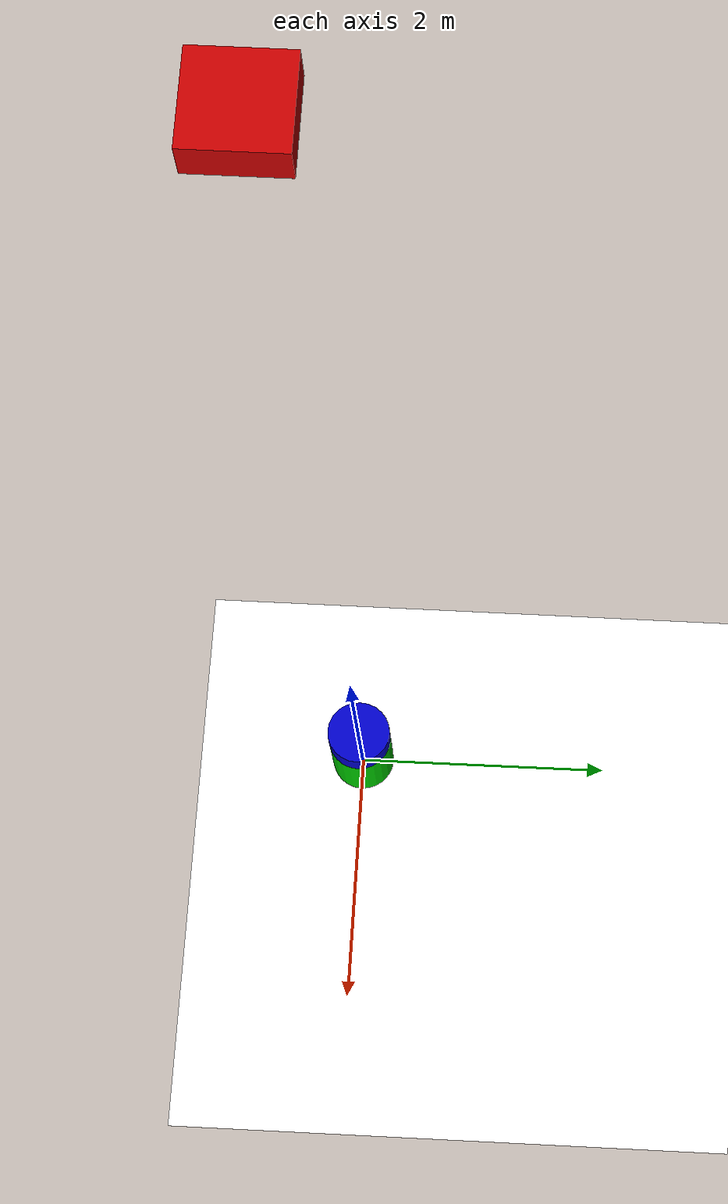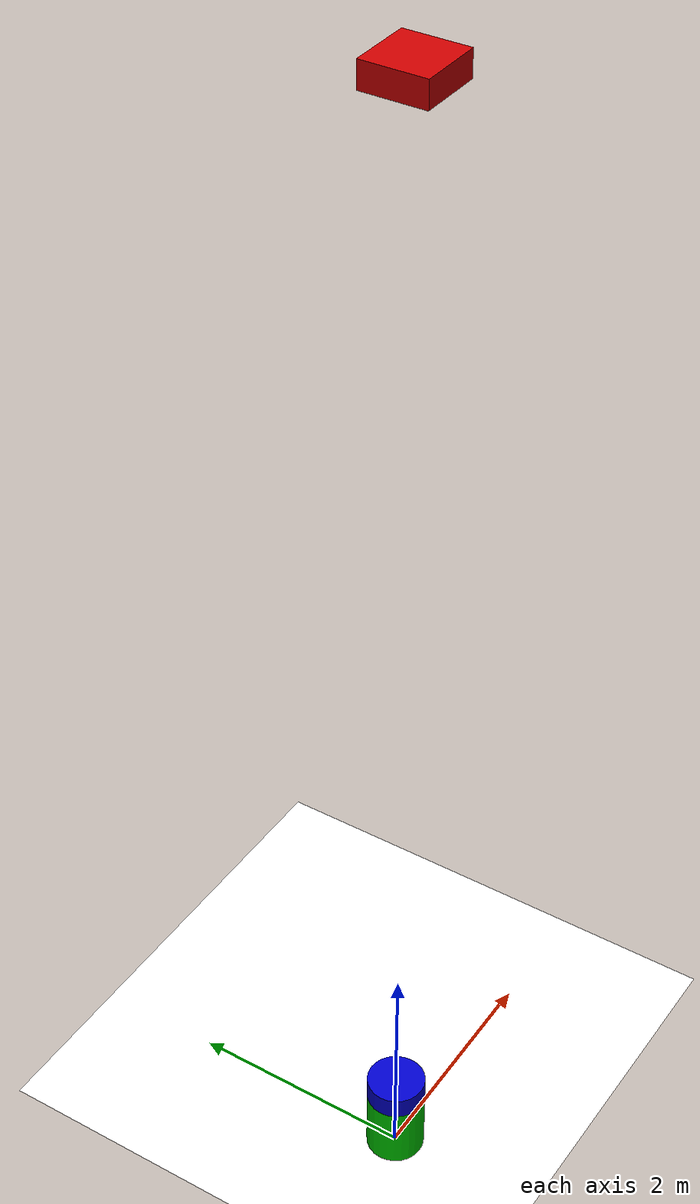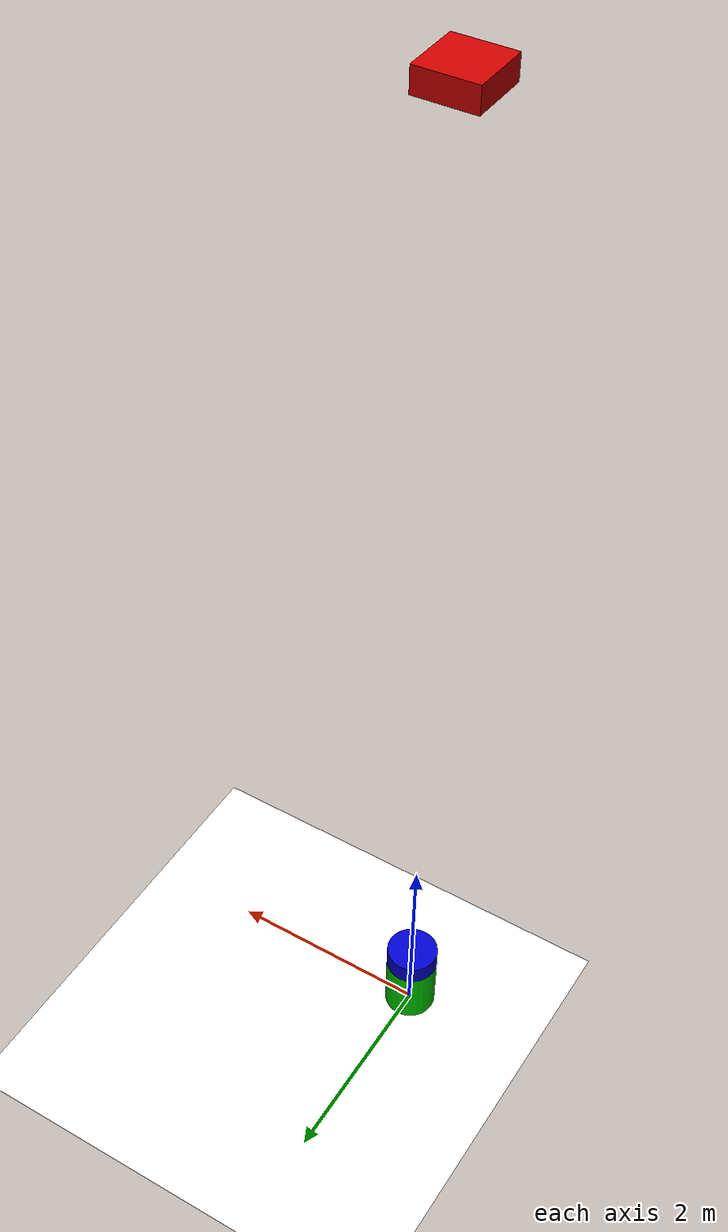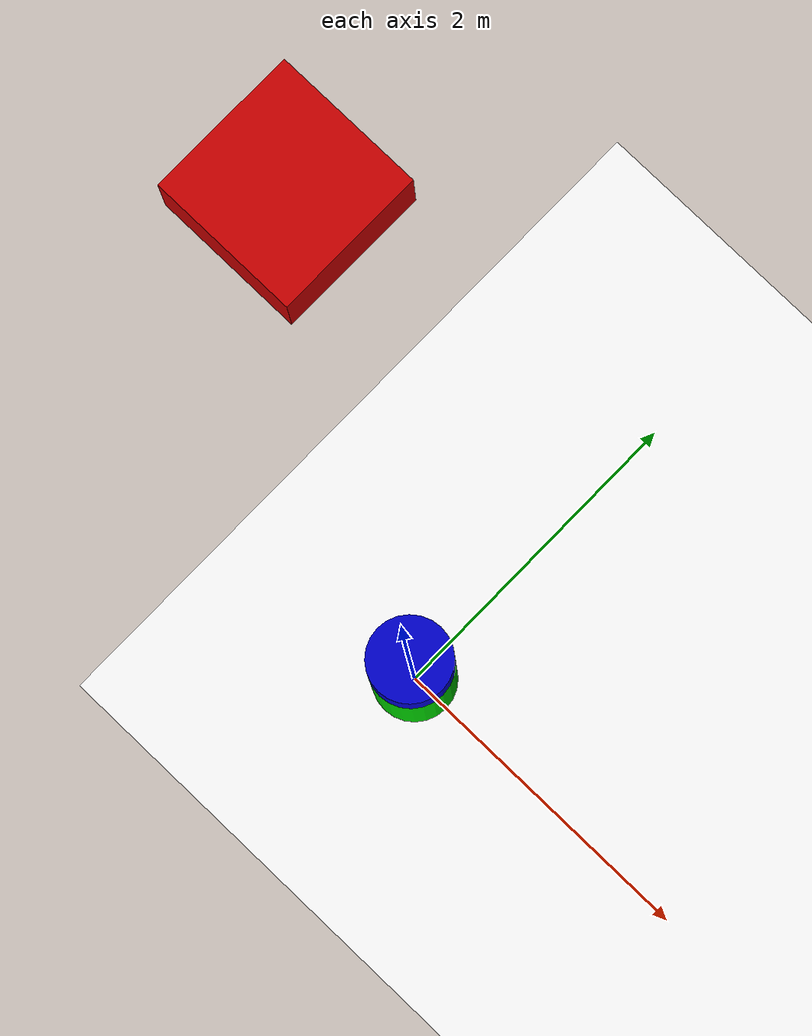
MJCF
<mujoco>
	<option gravity="0 0 -9.81">
		<flag contact="enable" />
	</option>
	<worldbody>
        <light diffuse=".5 .5 .5" pos="0 0 5" dir="0 0 -1" />
		<geom type="plane" size="20 20 0.1" rgba="1 1 1 1" />

        <body name="motor" pos="0 0 0.3" euler="0 0 0">
            <geom type="cylinder" size="0.25 0.3" rgba="0 .8 0 1" />
            <inertial pos="0 0 0" mass="10" diaginertia="1.0 1.0 1.0" />
            <body name="fts_sensor" pos="0 0 0.4" euler="0 0 0">
                <joint name="sensor_to_motor" type="hinge" axis="0 0 1" pos="0 0 0" />
                <geom type="cylinder" size="0.25 0.1" rgba="0 0 .8 1" />
                <inertial pos="0 0 0" mass="1" diaginertia="1.0 1.0 1.0" />
                <site name="fts_sensor_site" pos="0 0 0"/>
            </body>
        </body>
        <body name="weight" pos="0 0 10" euler="0 0 0">
            <freejoint name="world_to_weight"/>
            <geom type="box" size="0.25 0.25 0.1" rgba=".8 0 0 1" />
            <inertial pos="0 0 0" mass="10" diaginertia="1.0 1.0 1.0" />
            <site name="touch_site" type="box" size="0.25 0.25 0.1" rgba="0 1 0 0"/>
        </body>
	</worldbody>
    <sensor>
        <force name="fts_sensor_force" site="fts_sensor_site"/>
        <torque name="fts_sensor_torque" site="fts_sensor_site"/>
        <touch name="TouchSensor" site="touch_site"/>
    </sensor>
</mujoco>
